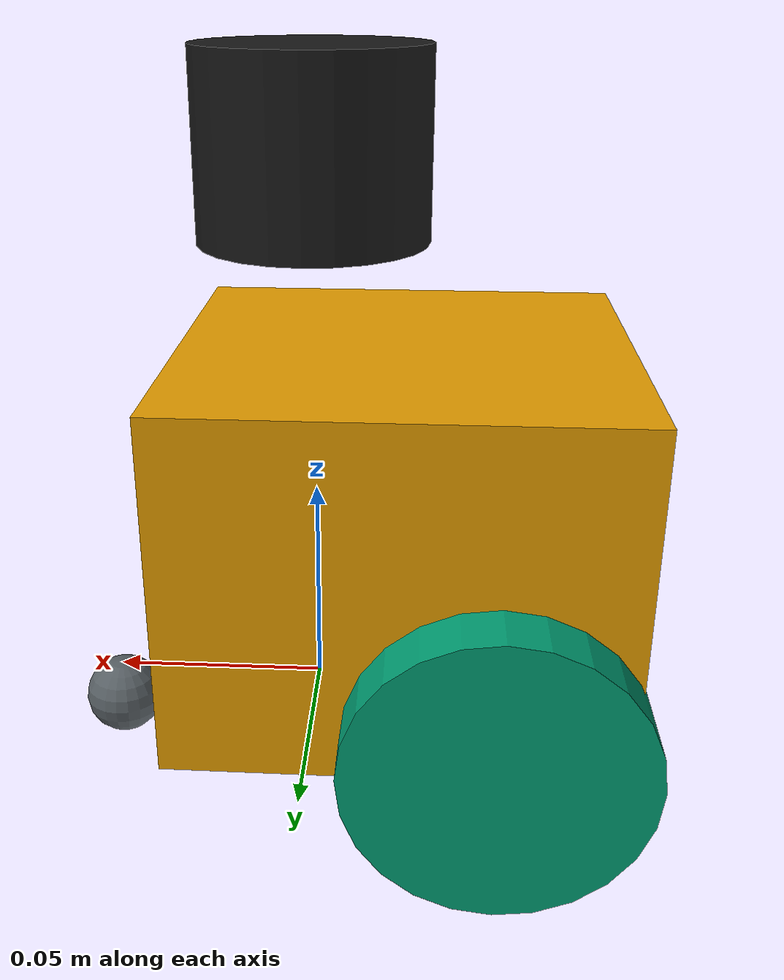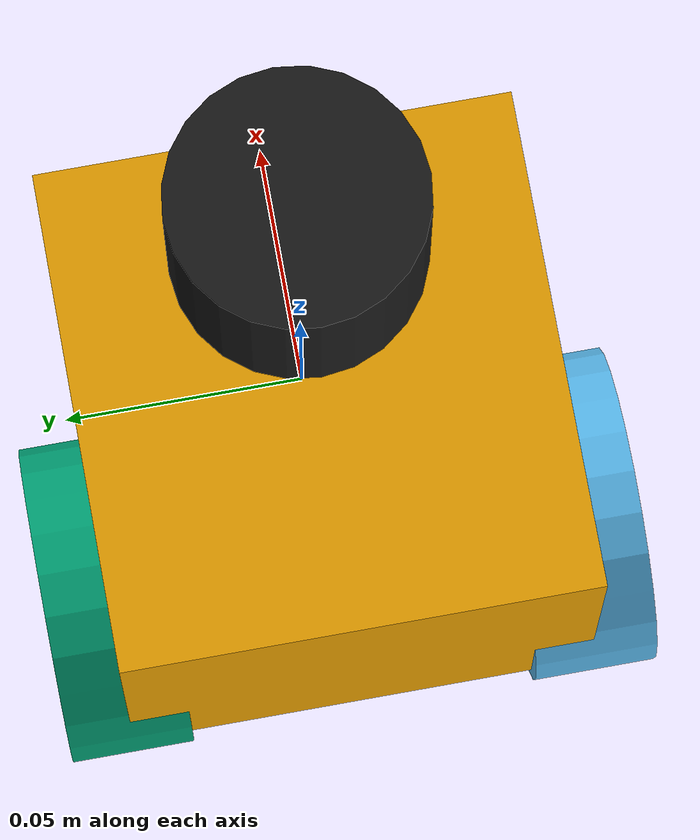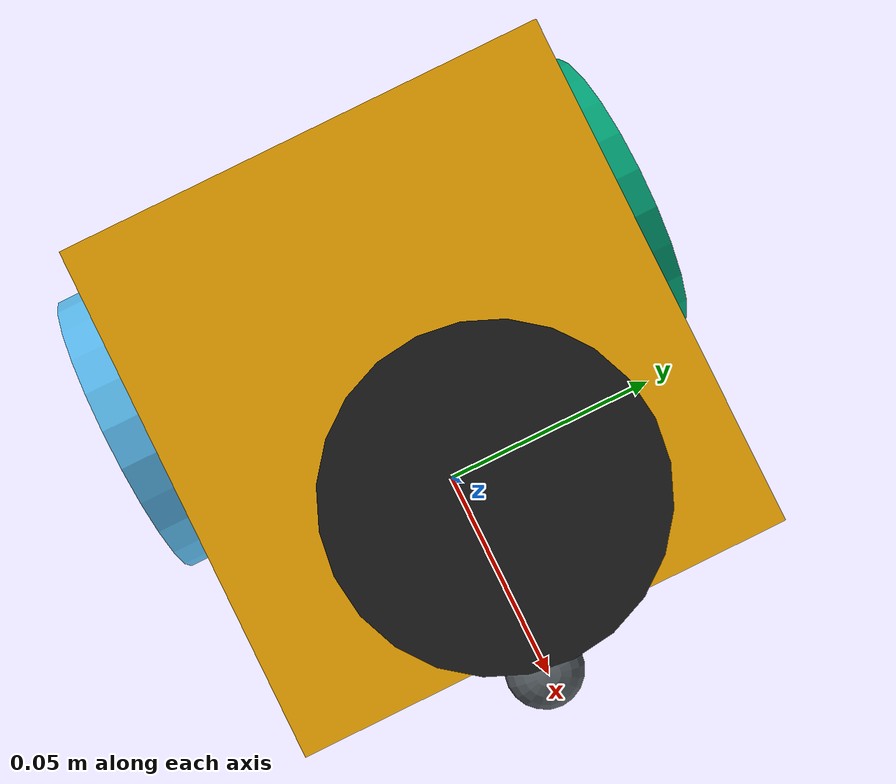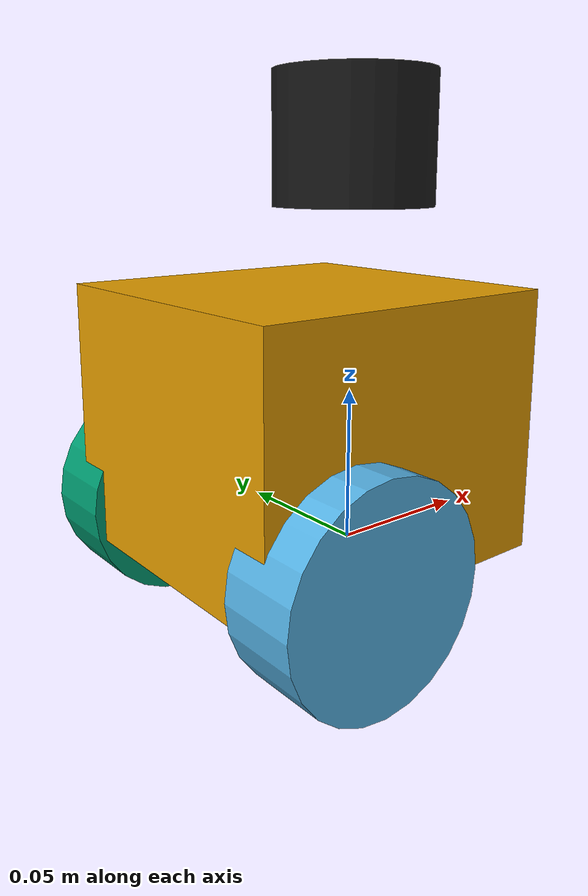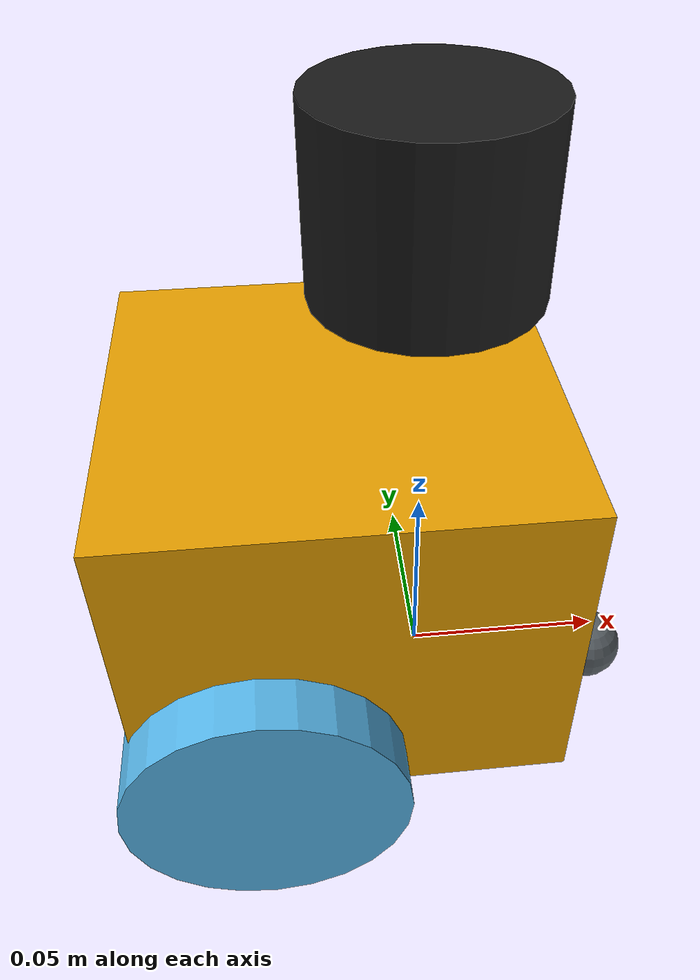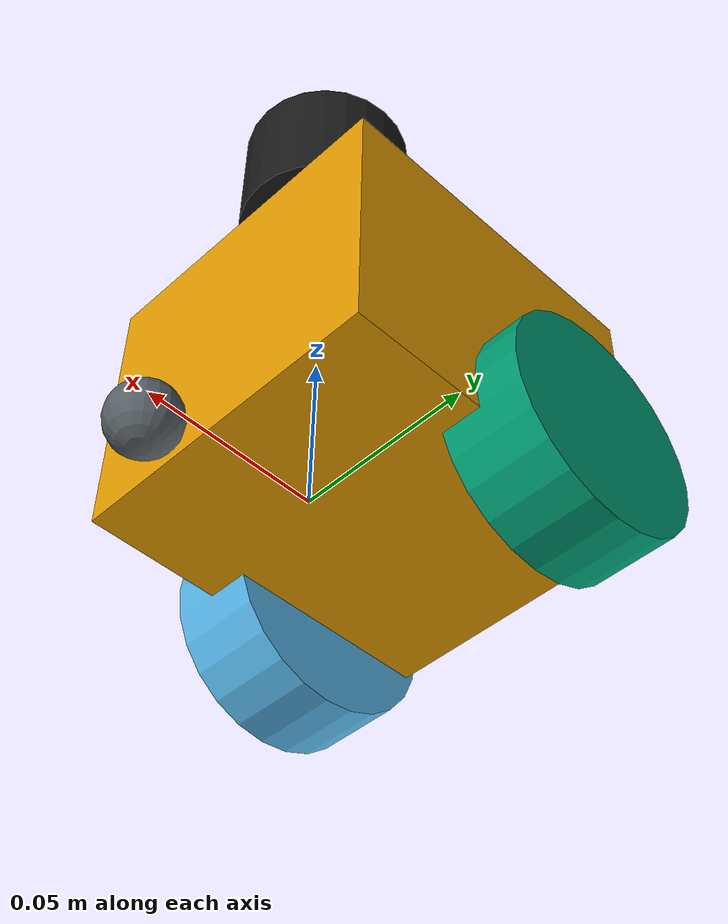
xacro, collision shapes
<?xml version="1.0" ?>
<!-- Fastbot simulation URDF - includes Gazebo plugins from fastbot_gazebo -->
<robot name="fastbot" xmlns:xacro="http://www.ros.org/wiki/xacro">

    <xacro:arg name="robot_name" default="fastbot"/>
    <xacro:property name="robot_name" value="$(arg robot_name)"/>

    <!-- Include body description -->
    <xacro:include filename="$(find fastbot_description)/models/urdf/materials.xacro" />
    <xacro:include filename="$(find fastbot_description)/models/urdf/fastbot_body.xacro" />

    <!-- Instantiate the robot body -->
    <xacro:fastbot_body robot_name="$(arg robot_name)"/>

    <!-- GAZEBO STUFF - reuse from fastbot_gazebo -->
    <xacro:include filename="$(find fastbot_gazebo)/gazebo/fastbot_physics_multi.gazebo" />
    <xacro:include filename="$(find fastbot_gazebo)/gazebo/fastbot_plugins_multi.gazebo" />

    <xacro:fastbot_physics robot_name="$(arg robot_name)"/>
    <xacro:fastbot_plugins robot_name="$(arg robot_name)"/>

</robot>

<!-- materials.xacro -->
<robot name="boxbot" xmlns:xacro="http://www.ros.org/wiki/xacro" >

<material name="grey">
  <color rgba="0.300 0.300 0.300 1.000"/>
</material>

<material name="black">
  <color rgba="0.000 0.000 0.000 1.000"/>
</material>

<material name="blue">
  <color rgba="0.000 0.000 1.000 1.000"/>
</material>

</robot>

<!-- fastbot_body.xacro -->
<!-- Generated using onshape-to-robot - with physics added -->
<!-- Onshape document_id: 4757b8f98f7afcc7c3655639 -->
<robot name="fastbot" xmlns:xacro="http://ros.org/wiki/xacro">

  <xacro:property name="PI" value="3.141592653589793" />
  <xacro:property name="wheel_radius" value="0.0325" />
  <xacro:property name="wheel_width" value="0.025" />

  <xacro:macro name="fastbot_body" params="robot_name">

    <!-- ==================== BASE LINK ==================== -->
    <link name="${robot_name}_base_link">
        <inertial>
            <origin xyz="0 0 0" rpy="0 0 0"/>
            <mass value="0.25"/>
            <inertia ixx="0.000767" ixy="0.0" ixz="0.0"
                     iyy="0.000568" iyz="0.0"
                     izz="0.000791"/>
        </inertial>
        <visual>
            <origin xyz="0 0 0" rpy="0 0 0"/>
            <geometry>
                <mesh filename="package://fastbot_description/onshape/new_assets/fastbotchassis.dae"/>
            </geometry>
        </visual>
        <collision>
            <origin xyz="-0.02 0 0.045" rpy="0 0 0"/>
            <geometry>
                <box size="0.10 0.095 0.08"/>
            </geometry>
        </collision>
    </link>

    <!-- ==================== RIGHT WHEEL ==================== -->
    <link name="${robot_name}_wheel_right">
        <inertial>
            <origin xyz="0 0 0" rpy="0 0 0"/>
            <mass value="0.03"/>
            <inertia ixx="1.044e-05" ixy="0" ixz="0"
                     iyy="1.044e-05" iyz="0"
                     izz="1.781e-05"/>
        </inertial>
        <visual>
            <origin xyz="0 0 0" rpy="0 0 0"/>
            <geometry>
                <mesh filename="package://fastbot_description/onshape/new_assets/wheeldae.dae"/>
            </geometry>
        </visual>
        <collision>
            <origin xyz="0 0 0" rpy="0 ${PI/2} 0"/>
            <geometry>
                <cylinder radius="${wheel_radius}" length="${wheel_width}"/>
            </geometry>
        </collision>
    </link>

    <joint name="${robot_name}_right_wheel" type="continuous">
        <origin xyz="-0.04091 -0.0479 0.014" rpy="0 0 1.5708"/>
        <parent link="${robot_name}_base_link"/>
        <child link="${robot_name}_wheel_right"/>
        <axis xyz="1 0 0"/>
        <limit effort="10" velocity="10"/>
    </joint>

    <!-- ==================== LEFT WHEEL ==================== -->
    <link name="${robot_name}_wheel_left">
        <inertial>
            <origin xyz="0 0 0" rpy="0 0 0"/>
            <mass value="0.03"/>
            <inertia ixx="1.044e-05" ixy="0" ixz="0"
                     iyy="1.044e-05" iyz="0"
                     izz="1.781e-05"/>
        </inertial>
        <visual>
            <origin xyz="0 0 0" rpy="0 0 0"/>
            <geometry>
                <mesh filename="package://fastbot_description/onshape/new_assets/wheeldae.dae"/>
            </geometry>
        </visual>
        <collision>
            <origin xyz="0 0 0" rpy="0 ${PI/2} 0"/>
            <geometry>
                <cylinder radius="${wheel_radius}" length="${wheel_width}"/>
            </geometry>
        </collision>
    </link>

    <joint name="${robot_name}_left_wheel" type="continuous">
        <origin xyz="-0.04091 0.0479 0.014" rpy="0 0 -1.5708"/>
        <parent link="${robot_name}_base_link"/>
        <child link="${robot_name}_wheel_left"/>
        <axis xyz="-1 0 0"/>
        <limit effort="10" velocity="10"/>
    </joint>

    <!-- ==================== BALL CASTER ==================== -->
    <!-- Wheel bottom at Z = 0.014 - 0.0325 = -0.0185 from base_link -->
    <!-- Caster ball center should be at Z = -0.0185 + 0.0095 = -0.009 -->
    <link name="${robot_name}_ball_caster">
        <inertial>
            <origin xyz="0 0 0" rpy="0 0 0"/>
            <mass value="0.01"/>
            <inertia ixx="1e-09" ixy="0" ixz="0"
                     iyy="1e-09" iyz="0"
                     izz="1e-09"/>
        </inertial>
        <visual>
            <origin xyz="0 0 0" rpy="0 0 0"/>
            <geometry>
                <sphere radius="0.0095"/>
            </geometry>
            <material name="caster_material">
                <color rgba="0.35 0.38 0.4 1.0"/>
            </material>
        </visual>
        <collision>
            <origin xyz="0 0 0" rpy="0 0 0"/>
            <geometry>
                <sphere radius="0.0095"/>
            </geometry>
        </collision>
    </link>

    <joint name="${robot_name}_caster_joint" type="fixed">
        <origin xyz="0.05 0 -0.009" rpy="0 0 0"/>
        <parent link="${robot_name}_base_link"/>
        <child link="${robot_name}_ball_caster"/>
    </joint>

    <!-- ==================== LIDAR ==================== -->
    <link name="${robot_name}_lidar">
        <inertial>
            <origin xyz="0 0 0" rpy="0 0 0"/>
            <mass value="0.05"/>
            <inertia ixx="0.0001" ixy="0" ixz="0"
                     iyy="0.0001" iyz="0"
                     izz="0.0002"/>
        </inertial>
        <visual>
            <origin xyz="0 0 0" rpy="0 0 0"/>
            <geometry>
                <mesh filename="package://fastbot_description/onshape/new_assets/lydar.dae"/>
            </geometry>
            <material name="lidar_material">
                <color rgba="0.1 0.1 0.1 1.0"/>
            </material>
        </visual>
        <collision>
            <origin xyz="0 0 0.02" rpy="0 0 0"/>
            <geometry>
                <cylinder radius="0.025" length="0.04"/>
            </geometry>
        </collision>
    </link>

    <joint name="${robot_name}_lidar_joint" type="fixed">
        <origin xyz="0 0 0.108" rpy="0 0 0"/>
        <parent link="${robot_name}_base_link"/>
        <child link="${robot_name}_lidar"/>
    </joint>

    <!-- ==================== CAMERA ==================== -->
    <link name="${robot_name}_camera">
        <inertial>
            <origin xyz="0 0 0" rpy="0 0 0"/>
            <mass value="0.01"/>
            <inertia ixx="1e-09" ixy="0" ixz="0"
                     iyy="1e-09" iyz="0"
                     izz="1e-09"/>
        </inertial>
    </link>

    <joint name="${robot_name}_camera_joint" type="fixed">
        <origin xyz="0.087 0 0.087" rpy="0 0 0"/>
        <parent link="${robot_name}_base_link"/>
        <child link="${robot_name}_camera"/>
    </joint>

  </xacro:macro>

</robot>
